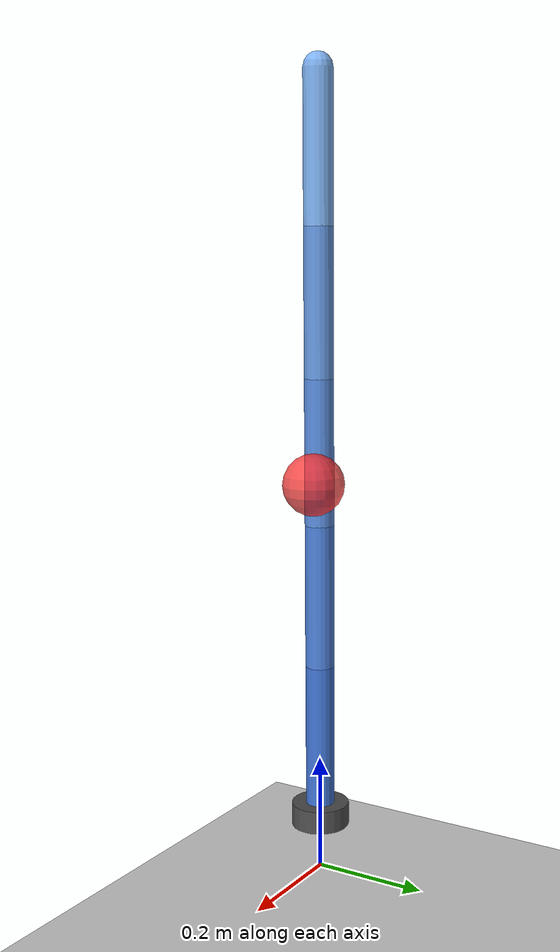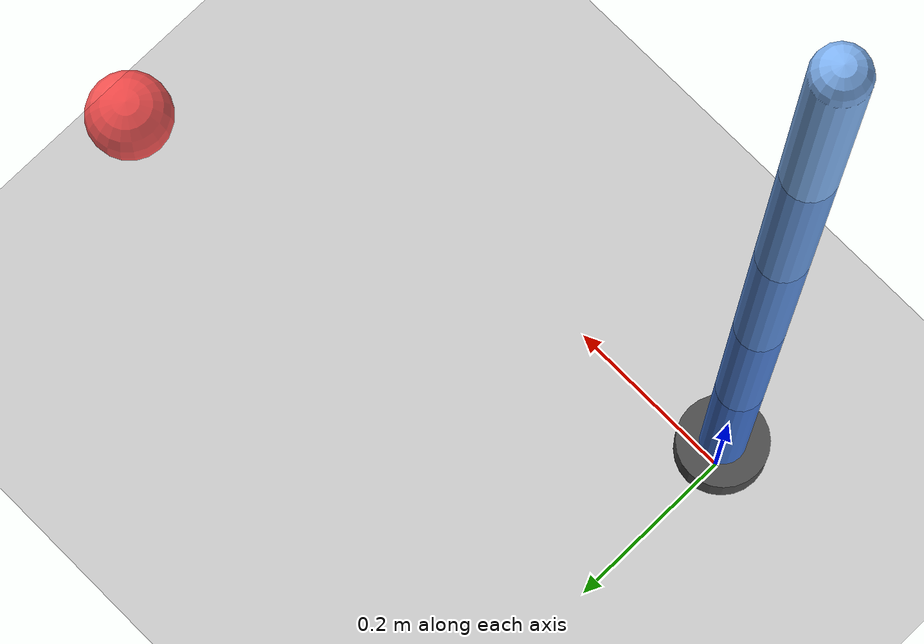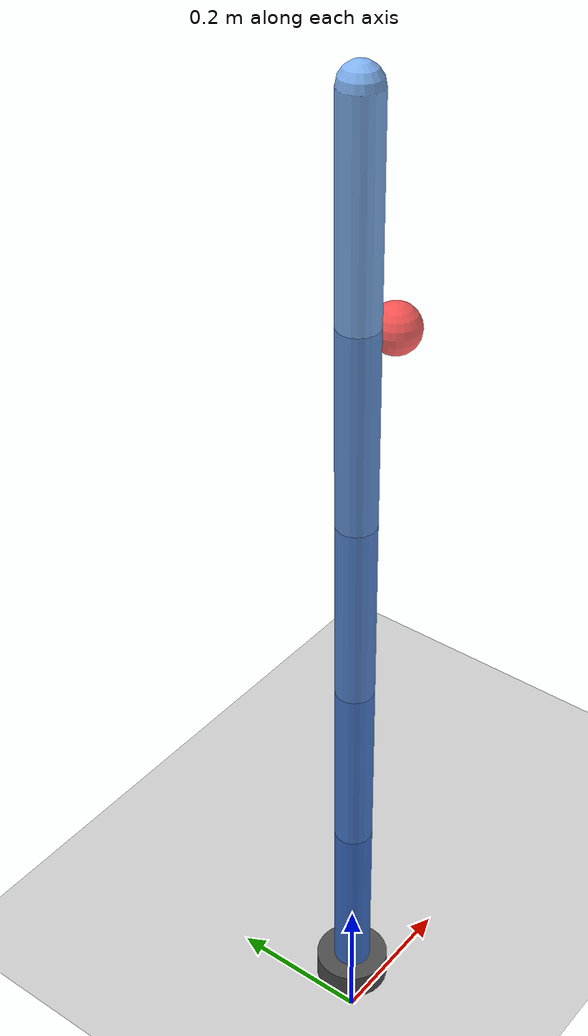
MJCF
<mujoco model="soft_tentacle_3d">

    <!--  COMPILER SETTINGS                                                    -->
    <!--
        angle="radian": All angle values are in radians
        coordinate="local": Body positions are relative to parent
    -->
    <compiler angle="radian" coordinate="local"/>

    <!--  SIMULATION OPTIONS                                                   -->
    <!--
        timestep: 0.002s = 500Hz simulation (good for soft robotics)
        gravity:  Earth gravity pointing down (-Z)
        integrator: RK4 for accurate physics (Runge-Kutta 4th order)
    -->
    <option timestep="0.002" gravity="0 0 -9.81" integrator="RK4"/>

    <!--  VISUAL SETTINGS                                                      -->
    <visual>
        <global offwidth="1280" offheight="720"/>
        <quality shadowsize="4096"/>
        <map force="0.1" zfar="30"/>
    </visual>

    <!--  ASSETS (Colors, Materials)                                           -->
    <asset>
        <!-- Ground texture -->
        <texture type="2d" name="grid_texture" builtin="checker"
                 width="512" height="512" rgb1="0.9 0.9 0.9" rgb2="0.7 0.7 0.7"/>
        <material name="grid_material" texture="grid_texture"
                  texrepeat="10 10" reflectance="0.1"/>

        <!-- Tentacle segment colors (gradient from base to tip) -->
        <material name="tentacle_base" rgba="0.2 0.4 0.8 1"/>
        <material name="tentacle_seg1" rgba="0.25 0.45 0.82 1"/>
        <material name="tentacle_seg2" rgba="0.3 0.5 0.84 1"/>
        <material name="tentacle_seg3" rgba="0.35 0.55 0.86 1"/>
        <material name="tentacle_seg4" rgba="0.4 0.6 0.88 1"/>
        <material name="tentacle_tip"  rgba="0.5 0.7 0.95 1"/>

        <!-- Target marker -->
        <material name="target_material" rgba="1 0.2 0.2 0.8"/>
    </asset>

    <!--  DEFAULT PROPERTIES                                                   -->
    <default>
        <!-- Default class for all elements -->
        <default class="tentacle">
            <joint type="hinge"
                   damping="0.5"
                   limited="true"
                   range="-0.785 0.785"
                   armature="0.01"/>

            <geom type="capsule"
                  size="0.025"
                  density="1000"
                  friction="1 0.5 0.5"
                  contype="1"
                  conaffinity="1"/>

            <motor ctrllimited="true"
                   ctrlrange="-1 1"
                   gear="50"/>
        </default>

        <!-- Pitch joints - rotation around Y-axis (forward/backward bending) -->
        <default class="pitch_joint">
            <joint axis="0 1 0"/>
        </default>

        <!-- Yaw joints - rotation around X-axis (left/right bending) -->
        <default class="yaw_joint">
            <joint axis="1 0 0"/>
        </default>
    </default>

    <!--  WORLD BODY (Scene Setup)                                             -->
    <worldbody>

        <!-- ============== LIGHTING ============== -->
        <light name="main_light" pos="0 0 3" dir="0 0 -1"
               diffuse="1 1 1" specular="0.3 0.3 0.3"/>
        <light name="side_light" pos="2 2 2" dir="-1 -1 -1"
               diffuse="0.5 0.5 0.5"/>

        <!-- ============== GROUND PLANE ============== -->
        <geom name="ground" type="plane" size="5 5 0.1"
              material="grid_material" contype="1" conaffinity="1"/>

        <!-- ============== TARGET MARKER ============== -->
        <body name="target" pos="0.5 0.3 0.8" mocap="true">
            <geom name="target_geom" type="sphere" size="0.04"
                  material="target_material" contype="0" conaffinity="0"/>
        </body>

        <!--  TENTACLE KINEMATIC CHAIN                                      -->

        <!-- FIXED BASE - Anchored to world -->
        <body name="base" pos="0 0 0.1">
            <geom name="base_geom" type="cylinder" size="0.05 0.02"
                  rgba="0.3 0.3 0.3 1" mass="1"/>

            <!-- ==================== LINK 1 ==================== -->
            <body name="link1" pos="0 0 0.02">
                <!--
                    JOINT 1 - PITCH (forward/backward bending)
                    Rotates around Y-axis
                -->
                <joint name="j1_pitch" class="tentacle pitch_joint"/>

                <!--
                    JOINT 1 - YAW (left/right bending)
                    Rotates around X-axis
                -->
                <joint name="j1_yaw" class="tentacle yaw_joint"/>

                <!-- Link 1 geometry: capsule from origin to 0.25m up -->
                <geom name="link1_geom" class="tentacle"
                      fromto="0 0 0  0 0 0.25" material="tentacle_seg1"/>

                <!-- Site at end of link (for measurements/sensors) -->
                <site name="link1_end" pos="0 0 0.25" size="0.01"/>

                <!-- ==================== LINK 2 ==================== -->
                <body name="link2" pos="0 0 0.25">
                    <joint name="j2_pitch" class="tentacle pitch_joint"/>
                    <joint name="j2_yaw" class="tentacle yaw_joint"/>

                    <geom name="link2_geom" class="tentacle"
                          fromto="0 0 0  0 0 0.25" material="tentacle_seg2"/>

                    <site name="link2_end" pos="0 0 0.25" size="0.01"/>

                    <!-- ==================== LINK 3 ==================== -->
                    <body name="link3" pos="0 0 0.25">
                        <joint name="j3_pitch" class="tentacle pitch_joint"/>
                        <joint name="j3_yaw" class="tentacle yaw_joint"/>

                        <geom name="link3_geom" class="tentacle"
                              fromto="0 0 0  0 0 0.25" material="tentacle_seg3"/>

                        <site name="link3_end" pos="0 0 0.25" size="0.01"/>

                        <!-- ==================== LINK 4 ==================== -->
                        <body name="link4" pos="0 0 0.25">
                            <joint name="j4_pitch" class="tentacle pitch_joint"/>
                            <joint name="j4_yaw" class="tentacle yaw_joint"/>

                            <geom name="link4_geom" class="tentacle"
                                  fromto="0 0 0  0 0 0.25" material="tentacle_seg4"/>

                            <site name="link4_end" pos="0 0 0.25" size="0.01"/>

                            <!-- ==================== LINK 5 (TIP) ==================== -->
                            <body name="link5" pos="0 0 0.25">
                                <joint name="j5_pitch" class="tentacle pitch_joint"/>
                                <joint name="j5_yaw" class="tentacle yaw_joint"/>

                                <geom name="link5_geom" class="tentacle"
                                      fromto="0 0 0  0 0 0.25" material="tentacle_tip"/>

                                <site name="tip" pos="0 0 0.25" size="0.015" rgba="1 0 0 1"/>

                            </body> <!-- end link5 -->
                        </body> <!-- end link4 -->
                    </body> <!-- end link3 -->
                </body> <!-- end link2 -->
            </body> <!-- end link1 -->
        </body> <!-- end base -->

    </worldbody>

    <!--  ACTUATORS (Motors)                                                   -->
    <actuator>
        <!-- Segment 1 motors -->
        <motor name="m1_pitch" class="tentacle" joint="j1_pitch"/>
        <motor name="m1_yaw"   class="tentacle" joint="j1_yaw"/>

        <!-- Segment 2 motors -->
        <motor name="m2_pitch" class="tentacle" joint="j2_pitch"/>
        <motor name="m2_yaw"   class="tentacle" joint="j2_yaw"/>

        <!-- Segment 3 motors -->
        <motor name="m3_pitch" class="tentacle" joint="j3_pitch"/>
        <motor name="m3_yaw"   class="tentacle" joint="j3_yaw"/>

        <!-- Segment 4 motors -->
        <motor name="m4_pitch" class="tentacle" joint="j4_pitch"/>
        <motor name="m4_yaw"   class="tentacle" joint="j4_yaw"/>

        <!-- Segment 5 motors -->
        <motor name="m5_pitch" class="tentacle" joint="j5_pitch"/>
        <motor name="m5_yaw"   class="tentacle" joint="j5_yaw"/>
    </actuator>

    <!--  SENSORS (Optional - for observation building)                        -->
    <sensor>
        <!-- Joint position sensors -->
        <jointpos name="sens_j1_pitch_pos" joint="j1_pitch"/>
        <jointpos name="sens_j1_yaw_pos"   joint="j1_yaw"/>
        <jointpos name="sens_j2_pitch_pos" joint="j2_pitch"/>
        <jointpos name="sens_j2_yaw_pos"   joint="j2_yaw"/>
        <jointpos name="sens_j3_pitch_pos" joint="j3_pitch"/>
        <jointpos name="sens_j3_yaw_pos"   joint="j3_yaw"/>
        <jointpos name="sens_j4_pitch_pos" joint="j4_pitch"/>
        <jointpos name="sens_j4_yaw_pos"   joint="j4_yaw"/>
        <jointpos name="sens_j5_pitch_pos" joint="j5_pitch"/>
        <jointpos name="sens_j5_yaw_pos"   joint="j5_yaw"/>

        <!-- Joint velocity sensors -->
        <jointvel name="sens_j1_pitch_vel" joint="j1_pitch"/>
        <jointvel name="sens_j1_yaw_vel"   joint="j1_yaw"/>
        <jointvel name="sens_j2_pitch_vel" joint="j2_pitch"/>
        <jointvel name="sens_j2_yaw_vel"   joint="j2_yaw"/>
        <jointvel name="sens_j3_pitch_vel" joint="j3_pitch"/>
        <jointvel name="sens_j3_yaw_vel"   joint="j3_yaw"/>
        <jointvel name="sens_j4_pitch_vel" joint="j4_pitch"/>
        <jointvel name="sens_j4_yaw_vel"   joint="j4_yaw"/>
        <jointvel name="sens_j5_pitch_vel" joint="j5_pitch"/>
        <jointvel name="sens_j5_yaw_vel"   joint="j5_yaw"/>

        <!-- Tip (end effector) position sensor -->
        <framepos name="sens_tip_pos" objtype="site" objname="tip"/>

        <!-- Tip orientation sensor (rotation matrix) -->
        <framexaxis name="sens_tip_xaxis" objtype="site" objname="tip"/>
        <frameyaxis name="sens_tip_yaxis" objtype="site" objname="tip"/>
        <framezaxis name="sens_tip_zaxis" objtype="site" objname="tip"/>
    </sensor>

</mujoco>
